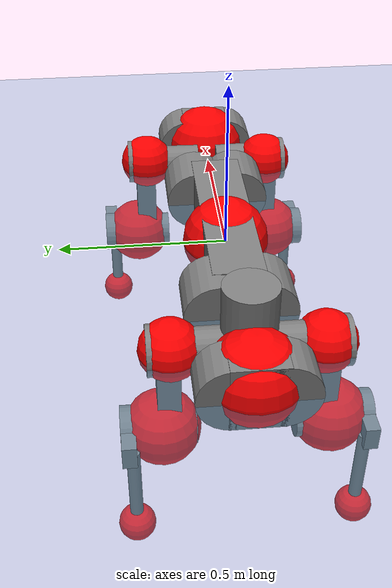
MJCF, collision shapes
<mujoco model="anymal_c">
  <compiler angle="radian" assetdir="assets" balanceinertia="true" inertiafromgeom="false"/>

  <option timestep="0.005" density="1.2" viscosity="2e-05"/>

  <size nkey="1"/>

  <visual>
    <quality shadowsize="8192"/>
    <map shadowclip="0.5"/>
  </visual>

  <default>
    <default class="/">
      <material specular="0" shininess="0.25"/>
      <geom contype="0" conaffinity="0" group="1" solref="-1000 -80"/>
      <site size="0.01 0.005 0.005" group="5"/>
      <general forcelimited="true" forcerange="-80 80" biastype="affine" gainprm="80" biasprm="0 -80 -2"/>
      <default class="anymal_c">
        <joint armature="0.01" damping="0.01" frictionloss="0.1"/>
        <default class="visual">
          <geom type="mesh" group="2"/>
          <default class="visual_zflip"/>
        </default>
        <default class="collision">
          <geom type="cylinder" group="3"/>
          <default class="foot">
            <geom size="0.03 0 0" type="sphere" condim="6" priority="1" friction="0.8 0.02 0.01" solimp="0.015 1 0.03"/>
          </default>
        </default>
      </default>
      <default class="reward_collision_sphere">
        <geom group="5" rgba="1 0 0 1"/>
      </default>
    </default>
  </default>

  <asset>
    <texture type="skybox" colorspace="auto" name="//unnamed_texture_0" builtin="gradient" rgb1="0.95 0.95 0.95" rgb2="0.95 0.95 0.95" width="100" height="600"/>
    <texture type="2d" colorspace="auto" name="texplane" builtin="checker" rgb1="0.345 0.575 0.748" rgb2="0.345 0.575 0.748" markrgb="1 1 1" width="512" height="512"/>
    <texture type="2d" colorspace="linear" name="base" file="base.png"/>
    <texture type="2d" colorspace="linear" name="top_shell" file="top_shell.png"/>
    <texture type="2d" colorspace="linear" name="bottom_shell" file="bottom_shell.png"/>
    <texture type="2d" colorspace="linear" name="remote" file="remote.png"/>
    <texture type="2d" colorspace="linear" name="hatch" file="hatch.png"/>
    <texture type="2d" colorspace="linear" name="handle" file="handle.png"/>
    <texture type="2d" colorspace="linear" name="face" file="face.png"/>
    <texture type="2d" colorspace="linear" name="battery" file="battery.png"/>
    <texture type="2d" colorspace="linear" name="lidar_cage" file="lidar_cage.png"/>
    <texture type="2d" colorspace="linear" name="depth_camera" file="depth_camera.png"/>
    <texture type="2d" colorspace="linear" name="wide_angle_camera" file="wide_angle_camera.png"/>
    <texture type="2d" colorspace="linear" name="lidar" file="lidar.png"/>
    <texture type="2d" colorspace="linear" name="drive" file="drive.png"/>
    <texture type="2d" colorspace="linear" name="hip_l" file="hip_l.png"/>
    <texture type="2d" colorspace="linear" name="shank_l" file="shank_l.png"/>
    <texture type="2d" colorspace="linear" name="foot" file="foot.png"/>
    <texture type="2d" colorspace="linear" name="thigh" file="thigh.png"/>
    <texture type="2d" colorspace="linear" name="shank_r" file="shank_r.png"/>
    <texture type="2d" colorspace="linear" name="hip_r" file="hip_r.png"/>
    <material name="MatPlane" class="/" texture="texplane" texuniform="true" texrepeat="2 2" specular="0.9" shininess="0.5"/>
    <material name="black_plastic" class="/" rgba="0.007 0.007 0.007 1"/>
    <material name="green" class="/" rgba="0.052 0.178 0.033 1"/>
    <material name="red" class="/" rgba="0.178 0.006 0.005 1"/>
    <material name="yellow" class="/" rgba="0.178 0.119 0.006 1"/>
    <material name="lwl" class="/" rgba="0.8 0.8 0.8 1"/>
    <material name="base" class="/" texture="base"/>
    <material name="top_shell" class="/" texture="top_shell"/>
    <material name="bottom_shell" class="/" texture="bottom_shell"/>
    <material name="hip_l" class="/" texture="hip_l"/>
    <material name="thigh" class="/" texture="thigh"/>
    <material name="shank_l" class="/" texture="shank_l"/>
    <material name="foot" class="/" texture="foot"/>
    <material name="hip_r" class="/" texture="hip_r"/>
    <material name="shank" class="/" texture="shank_r"/>
    <material name="hatch" class="/" texture="hatch"/>
    <material name="remote" class="/" texture="remote"/>
    <material name="handle" class="/" texture="handle"/>
    <material name="face" class="/" texture="face"/>
    <material name="depth_camera" class="/" texture="depth_camera"/>
    <material name="wide_angle_camera" class="/" texture="wide_angle_camera"/>
    <material name="battery" class="/" texture="battery"/>
    <material name="lidar_cage" class="/" texture="lidar_cage"/>
    <material name="lidar" class="/" texture="lidar"/>
    <material name="drive" class="/" texture="drive"/>
    <mesh name="base_0" class="/" file="base_0.obj"/>
    <mesh name="base_1" class="/" file="base_1.obj"/>
    <mesh name="base_2" class="/" file="base_2.obj"/>
    <mesh name="base_3" class="/" file="base_3.obj"/>
    <mesh name="base_4" class="/" file="base_4.obj"/>
    <mesh name="base_5" class="/" file="base_5.obj"/>
    <mesh name="top_shell" class="/" file="top_shell.obj"/>
    <mesh name="bottom_shell" class="/" file="bottom_shell.obj"/>
    <mesh name="remote" class="/" file="remote.obj"/>
    <mesh name="handle" class="/" file="handle.obj"/>
    <mesh name="face" class="/" file="face.obj"/>
    <mesh name="wide_angle_camera" class="/" file="wide_angle_camera.obj"/>
    <mesh name="depth_camera" class="/" file="depth_camera.obj"/>
    <mesh name="battery" class="/" file="battery.obj"/>
    <mesh name="lidar_cage" class="/" file="lidar_cage.obj"/>
    <mesh name="lidar" class="/" file="lidar.obj"/>
    <mesh name="drive" class="/" file="drive.obj"/>
    <mesh name="hip_l" class="/" file="hip_l.obj"/>
    <mesh name="thigh" class="/" file="thigh.obj"/>
    <mesh name="shank_l" class="/" file="shank_l.obj"/>
    <mesh name="foot" class="/" file="foot.obj"/>
    <mesh name="hip_r" class="/" file="hip_r.obj"/>
    <mesh name="hatch" class="/" file="hatch.obj"/>
    <mesh name="shank_r" class="/" file="shank_r.obj"/>
  </asset>

  <worldbody>
    <geom name="floor" class="/" size="100 100 0.125" type="plane" group="0" material="MatPlane"/>
    <light name="toplight_shadow" class="/" pos="0 0 5" dir="0.0990148 0.0990148 -0.990148" type="directional" ambient="0.04 0.04 0.04" diffuse="0.55 0.55 0.55" specular="0.12 0.12 0.12"/>
    <light name="toplight_fill" class="/" pos="0 0 5" dir="0.0990148 0.0990148 -0.990148" type="directional" castshadow="false" ambient="0.04 0.04 0.04" diffuse="0.3 0.3 0.3" specular="0.08 0.08 0.08"/>
    <body name="trunk" childclass="anymal_c" pos="0.00031472 -0.000430604 0.00804841" quat="1 -0.0004677 -0.000306744 -0.000123271">
      <inertial pos="0.00388253 -0.0118709 0.0393206" quat="0.499368 0.500393 0.50021 0.500029" mass="24.5845" diaginertia="2.72912 0.374216 0.189856"/>
      <joint name="//unnamed_joint_0" type="free" armature="0" damping="0" frictionloss="0"/>
      <geom name="//unnamed_geom_1" class="visual" material="green" mesh="base_0"/>
      <geom name="//unnamed_geom_2" class="visual" material="yellow" mesh="base_1"/>
      <geom name="//unnamed_geom_3" class="visual" material="red" mesh="base_2"/>
      <geom name="//unnamed_geom_4" class="visual" material="black_plastic" mesh="base_3"/>
      <geom name="//unnamed_geom_5" class="visual" material="lwl" mesh="base_4"/>
      <geom name="//unnamed_geom_6" class="visual" material="base" mesh="base_5"/>
      <geom name="trunk_1" class="collision" size="0.310461 0.074939 0.0963501" type="box"/>
      <geom name="trunk_2" class="collision" size="0.0963501 0.0776154" pos="0.295235 0.0623517 0" quat="0.707107 0 0.707107 0"/>
      <geom name="trunk_3" class="collision" size="0.0963501 0.0776154" pos="-0.295235 0.0623517 0" quat="0.707107 0 0.707107 0"/>
      <geom name="trunk_4" class="collision" size="0.0963501 0.0776154" pos="0.295235 -0.0623517 0" quat="0.707107 0 0.707107 0"/>
      <geom name="trunk_5" class="collision" size="0.0963501 0.0776154" pos="-0.295235 -0.0623517 0" quat="0.707107 0 0.707107 0"/>
      <geom name="//unnamed_geom_12" class="visual" material="top_shell" mesh="top_shell"/>
      <geom name="//unnamed_geom_13" class="visual" material="bottom_shell" mesh="bottom_shell"/>
      <geom name="//unnamed_geom_14" class="visual" material="remote" mesh="remote"/>
      <geom name="//unnamed_geom_15" class="visual" material="handle" mesh="handle"/>
      <geom name="//unnamed_geom_16" class="visual" pos="0.562643 0 0" quat="1 0 0 0" material="face" mesh="face"/>
      <geom name="trunk_6" class="collision" size="0.0588806 0.074939 0.0963501" pos="0.6373 0 0" type="box"/>
      <geom name="//unnamed_geom_18" class="collision" size="0.0963501 0.0588806" pos="0.6373 0.0623517 0" quat="0.707107 0 0.707107 0"/>
      <geom name="//unnamed_geom_19" class="collision" size="0.0963501 0.0588806" pos="0.6373 -0.0623517 0" quat="0.707107 0 0.707107 0"/>
      <geom name="//unnamed_geom_20" class="visual" pos="0.626628 0 -0.0251416" quat="0.965926 0 0.258819 0" material="depth_camera" mesh="depth_camera"/>
      <geom name="//unnamed_geom_21" class="visual" pos="0.696347 0 0.014424" material="wide_angle_camera" mesh="wide_angle_camera"/>
      <geom name="//unnamed_geom_22" class="visual_zflip" pos="-0.562643 0 0" quat="0 0 0 1" material="face" mesh="face"/>
      <geom name="trunk_7" class="collision" size="0.0588806 0.074939 0.0963501" pos="-0.6373 0 0" quat="0 0 0 1" type="box"/>
      <geom name="//unnamed_geom_24" class="collision" size="0.0963501 0.0588806" pos="-0.6373 -0.0623517 0" quat="0 -0.707107 0 0.707107"/>
      <geom name="//unnamed_geom_25" class="collision" size="0.0963501 0.0588806" pos="-0.6373 0.0623517 0" quat="0 -0.707107 0 0.707107"/>
      <geom name="//unnamed_geom_26" class="visual" pos="-0.626628 0 -0.0251416" quat="0 -0.258819 0 0.965926" material="depth_camera" mesh="depth_camera"/>
      <geom name="//unnamed_geom_27" class="visual_zflip" pos="-0.696347 0 0.014424" quat="0 0 0 1" material="wide_angle_camera" mesh="wide_angle_camera"/>
      <geom name="//unnamed_geom_28" class="visual" material="battery" mesh="battery"/>
      <geom name="//unnamed_geom_29" class="visual" pos="0 0.0619659 0.030984" quat="0.683013 -0.183013 0.183013 0.683013" material="depth_camera" mesh="depth_camera"/>
      <geom name="//unnamed_geom_30" class="visual" pos="0 -0.0619659 0.030984" quat="0.683013 0.183013 0.183013 -0.683013" material="depth_camera" mesh="depth_camera"/>
      <geom name="//unnamed_geom_31" class="visual" pos="-0.494094 0 0.0708194" quat="1 0 0 0" material="lidar_cage" mesh="lidar_cage"/>
      <geom name="trunk_8" class="collision" size="0.074939 0.0642334" pos="-0.494094 0 0.128631"/>
      <geom name="//unnamed_geom_33" class="visual" pos="-0.494094 -0.000183339 0.137014" quat="0.707107 0 0 -0.707107" material="lidar" mesh="lidar"/>
      <geom name="//unnamed_geom_34" class="visual" pos="0.407085 0.0926627 -1.25565e-09" quat="0.258819 0.965926 0 0" material="drive" mesh="drive"/>
      <geom name="//unnamed_geom_35" class="visual" pos="0.407085 -0.0926627 1.25565e-09" quat="0.258819 -0.965926 0 0" material="drive" mesh="drive"/>
      <geom name="//unnamed_geom_36" class="visual" pos="-0.407085 0.0926627 1.25565e-09" quat="0 0 0.965926 -0.258819" material="drive" mesh="drive"/>
      <geom name="//unnamed_geom_37" class="visual" pos="-0.407085 -0.0926627 -1.25565e-09" quat="0 0 -0.965926 -0.258819" material="drive" mesh="drive"/>
      <geom name="//unnamed_geom_38" class="visual" pos="0.157459 0 0.0703376" quat="1 0 0 0" material="hatch" mesh="hatch"/>
      <geom name="//unnamed_geom_39" class="reward_collision_sphere" size="0.128467"/>
      <geom name="//unnamed_geom_40" class="reward_collision_sphere" size="0.128467" pos="0.610831 0 0"/>
      <geom name="//unnamed_geom_41" class="reward_collision_sphere" size="0.128467" pos="-0.610831 0 0"/>
      <site name="imu" pos="0.319991 0.0376526 0.0250322" size="0.0107056"/>
      <camera name="track" pos="0 -1.78148 0" quat="0.707107 0.707107 0 0" mode="trackcom"/>
      <camera name="ego_camera" pos="0.610831 0 -0.0385412" quat="-0.5 -0.5 0.5 0.5"/>
      <body name="LF_HIP" pos="0.40639 0.0995733 8.38152e-05" quat="0.258762 0.96594 -0.000389759 -0.00115515">
        <inertial pos="0.0871635 -0.0145612 -0.00224478" quat="-0.127028 0.707607 -0.135351 0.681789" mass="3.63918" diaginertia="0.0278166 0.00306334 0.0026066"/>
        <joint name="LF_HAA" pos="0 0 0" axis="1 -2.51902e-06 0.000819204" range="-0.626892 0.505889" armature="0.00677439" damping="0" frictionloss="0.159281"/>
        <geom name="//unnamed_geom_42" class="visual" pos="0 -7.3864e-05 1.21321e-05" quat="0.258819 -0.965926 0 0" material="hip_l" mesh="hip_l"/>
        <geom name="//unnamed_geom_43" class="visual" pos="0.0813084 -0.0924039 -0.0538878" quat="0.183013 -0.683013 0.683013 0.183013" material="drive" mesh="drive"/>
        <geom name="//unnamed_geom_44" class="collision" size="0.0535278 0.074939" pos="0.0813084 -0.0106531 -0.00665317" quat="-0.353553 -0.612372 0.612372 -0.353553"/>
        <body name="LF_THIGH" pos="0.081237 -0.0643582 -0.0450266" quat="0.182825 -0.682793 0.683153 0.183497">
          <inertial pos="0.0409548 -0.0012812 -0.230826" quat="0.992808 -0.00908837 -0.0822493 0.086519" mass="4.15144" diaginertia="0.135159 0.0168593 0.00455811"/>
          <joint name="LF_HFE" pos="0 0 0" axis="0.999702 0.0148491 -0.0194004" stiffness="0.0139892" range="-2.99447 3.04748" armature="0.00906375" damping="0.00777209" frictionloss="0.10743"/>
          <geom name="//unnamed_geom_45" class="visual" pos="0.00928476 1.46306e-05 0" quat="0.707107 0 0 -0.707107" material="thigh" mesh="thigh"/>
          <geom name="//unnamed_geom_46" class="collision" size="0.0695862 0.0428223" pos="0.0542961 0 0" quat="0.5 0.5 -0.5 -0.5"/>
          <geom name="//unnamed_geom_47" class="collision" size="0.0401459 0.0321167 0.151285" pos="0.0407221 0 -0.13616" quat="0.707107 0 0 -0.707107" type="box"/>
          <geom name="//unnamed_geom_48" class="visual" pos="0.136147 0 -0.274606" quat="1 0 0 0" material="drive" mesh="drive"/>
          <geom name="//unnamed_geom_49" class="collision" size="0.0535278 0.074939" pos="0.0411293 0 -0.274606" quat="0.707107 0 0.707107 0"/>
          <geom name="//unnamed_geom_50" class="reward_collision_sphere" size="0.0856445" pos="0.033935 0 0"/>
          <body name="LF_SHANK" pos="0.140799 -0.00787373 -0.283373" quat="0.999984 0.00171367 -0.00152463 0.00518006">
            <inertial pos="0.00689155 -0.0543672 -0.0788931" quat="0.992828 -0.116633 -0.00244228 -0.0261272" mass="0.836395" diaginertia="0.0461337 0.00536659 0.00103516"/>
            <joint name="LF_KFE" pos="0 0 0" axis="0.999934 -0.00885697 0.00728124" stiffness="0.00329891" range="-3.14724 3.16345" armature="0.013499" damping="0" frictionloss="0.150298"/>
            <geom name="//unnamed_geom_51" class="visual" pos="0.00302756 0.0161431 0" quat="0.707107 0 0 -0.707107" material="shank_l" mesh="shank_l"/>
            <geom name="LF_kfe_act" class="collision" size="0.0642334 0.0214111" pos="0.027148 0 0" quat="0.5 0.5 -0.5 -0.5"/>
            <geom name="//unnamed_geom_53" class="collision" size="0.0615559 0.0361313 0.0203406" pos="0.027148 -0.0512166 0" quat="0.5 0.5 -0.5 -0.5" type="box"/>
            <geom name="//unnamed_geom_54" class="visual" pos="0.0177134 -0.0731382 -0.325644" quat="0.382683 0 0 -0.92388" material="foot" mesh="foot"/>
            <geom name="LF_calf" class="collision" size="0.0187347 0.151218" pos="0.0177141 -0.0783405 -0.162822" quat="0.707107 0 0 -0.707107"/>
            <geom name="LF_foot" class="foot" size="0.0208662" pos="0.0177141 -0.0783405 -0.303965" quat="0.707107 0 0 -0.707107"/>
            <geom name="//unnamed_geom_57" class="reward_collision_sphere" size="0.107056" pos="-0.0678701 0 0"/>
            <geom name="//unnamed_geom_58" class="reward_collision_sphere" size="0.0535278" pos="0.0177141 -0.0783405 -0.303965"/>
            <site name="LF_foot" class="foot" pos="0.0177141 -0.0783405 -0.303965" quat="0.707107 0 0 -0.707107" size="0.0107056"/>
          </body>
        </body>
      </body>
      <body name="RF_HIP" pos="0.403717 -0.0861236 -0.000763937" quat="0.257732 -0.966205 0.00110526 0.00448559">
        <inertial pos="0.0757009 0.0130244 -0.0070081" quat="0.133991 0.683146 0.122939 0.707279" mass="3.728" diaginertia="0.0304446 0.00334276 0.00267822"/>
        <joint name="RF_HAA" pos="0 0 0" axis="0.99998 -0.000824752 0.0062827" range="-0.668781 0.944628" armature="0.00996192" damping="0" frictionloss="0.145189"/>
        <geom name="//unnamed_geom_59" class="visual" pos="0 7.38634e-05 1.21321e-05" quat="0.258819 0.965926 0 0" material="hip_r" mesh="hip_r"/>
        <geom name="//unnamed_geom_60" class="visual" pos="0.0813084 0.0924039 -0.0538878" quat="0.183013 0.683013 0.683013 -0.183013" material="drive" mesh="drive"/>
        <geom name="//unnamed_geom_61" class="collision" size="0.0535278 0.074939" pos="0.0813084 0.0106531 -0.00665317" quat="-0.353553 0.612372 0.612372 0.353553"/>
        <body name="RF_THIGH" pos="0.0686527 0.0584429 -0.038501" quat="0.181985 0.683731 0.682495 -0.183286">
          <inertial pos="0.0432001 0.000547667 -0.236902" quat="0.992824 0.000460587 -0.0834279 0.085672" mass="3.36993" diaginertia="0.133279 0.0148548 0.00285919"/>
          <joint name="RF_HFE" pos="0 0 0" axis="0.998321 -0.0277786 -0.050831" stiffness="0.00606905" range="-3.40363 3.36552" armature="0.0114297" damping="0.049534" frictionloss="0.117579"/>
          <geom name="//unnamed_geom_62" class="visual" pos="0.00928476 1.46306e-05 0" quat="0.707107 0 0 -0.707107" material="thigh" mesh="thigh"/>
          <geom name="//unnamed_geom_63" class="collision" size="0.0695862 0.0428223" pos="0.0542961 0 0" quat="0.5 0.5 0.5 0.5"/>
          <geom name="//unnamed_geom_64" class="collision" size="0.0401459 0.0321167 0.151285" pos="0.0407221 0 -0.13616" quat="0.707107 0 0 0.707107" type="box"/>
          <geom name="//unnamed_geom_65" class="visual" pos="0.136147 0 -0.274606" quat="1 0 0 0" material="drive" mesh="drive"/>
          <geom name="//unnamed_geom_66" class="collision" size="0.0535278 0.074939" pos="0.0411293 0 -0.274606" quat="0.707107 0 0.707107 0"/>
          <geom name="//unnamed_geom_67" class="reward_collision_sphere" size="0.0856445" pos="0.033935 0 0"/>
          <body name="RF_SHANK" pos="0.12451 -0.00156854 -0.280273" quat="1 -0.00014323 0.000437352 0.000487169">
            <inertial pos="0.0115013 0.0565078 -0.0901954" quat="0.994467 0.103004 0.000932059 0.0205974" mass="0.858709" diaginertia="0.0437466 0.00518705 0.00093047"/>
            <joint name="RF_KFE" pos="0 0 0" axis="0.997781 -0.061065 0.0265327" stiffness="0.0180059" range="-3.19275 3.33447" armature="0.0115311" damping="0.00358423" frictionloss="0.177743"/>
            <geom name="//unnamed_geom_68" class="visual" pos="0.00302754 -0.0161431 0" quat="0.707107 0 0 0.707107" material="shank" mesh="shank_r"/>
            <geom name="RF_kfe_act" class="collision" size="0.0642334 0.0214111" pos="0.027148 0 0" quat="0.5 0.5 0.5 0.5"/>
            <geom name="//unnamed_geom_70" class="collision" size="0.0615559 0.0361313 0.0203406" pos="0.027148 0.0512166 0" quat="0.5 0.5 0.5 0.5" type="box"/>
            <geom name="//unnamed_geom_71" class="visual" pos="0.0177148 0.0731382 -0.325644" quat="0.382683 0 0 0.92388" material="foot" mesh="foot"/>
            <geom name="RF_calf" class="collision" size="0.0187347 0.151218" pos="0.0177141 0.0783405 -0.162822" quat="0.707107 0 0 0.707107"/>
            <geom name="RF_foot" class="foot" size="0.029832" pos="0.0177141 0.0783405 -0.303965" quat="0.707107 0 0 0.707107"/>
            <geom name="//unnamed_geom_74" class="reward_collision_sphere" size="0.107056" pos="-0.0678701 0 0"/>
            <geom name="//unnamed_geom_75" class="reward_collision_sphere" size="0.0535278" pos="0.0177141 0.0783405 -0.303965"/>
            <site name="RF_foot" class="foot" pos="0.0177141 0.0783405 -0.303965" quat="0.707107 0 0 0.707107" size="0.0107056"/>
          </body>
        </body>
      </body>
      <body name="LH_HIP" pos="-0.405223 0.0843762 0.000208572" quat="2.0007e-05 -3.40806e-05 0.965888 -0.258959">
        <inertial pos="0.0824547 0.023559 -0.00904882" quat="0.0680516 0.685503 0.114421 0.715795" mass="3.97134" diaginertia="0.0257245 0.00249621 0.00288414"/>
        <joint name="LH_HAA" pos="0 0 0" axis="0.999172 0.0205858 -0.0350983" stiffness="0.0431317" range="-0.529242 0.82744" armature="0.0111939" damping="0.0441076" frictionloss="0.0768339"/>
        <geom name="//unnamed_geom_76" class="visual" pos="0 7.38634e-05 1.21321e-05" quat="-0.258819 -0.965926 0 0" material="hip_r" mesh="hip_r"/>
        <geom name="//unnamed_geom_77" class="visual" pos="0.0813084 0.0924039 -0.0538878" quat="0.183013 0.683013 0.683013 -0.183013" material="drive" mesh="drive"/>
        <geom name="//unnamed_geom_78" class="collision" size="0.0535278 0.074939" pos="0.0813084 0.0106531 -0.00665317" quat="-0.353553 0.612372 0.612372 0.353553"/>
        <body name="LH_THIGH" pos="0.0807893 0.0748007 -0.0392375" quat="0.181216 0.683575 0.682359 -0.185129">
          <inertial pos="0.045309 0.00793667 -0.236642" quat="0.995012 -0.00352373 -0.0656492 0.0750299" mass="3.60731" diaginertia="0.121208 0.0154598 0.00277892"/>
          <joint name="LH_HFE" pos="0 0 0" axis="0.999989 -0.00302444 -0.00371933" range="-3.15488 3.16753" armature="0.011072" damping="0.0215752" frictionloss="0.109824"/>
          <geom name="//unnamed_geom_79" class="visual" pos="0.00928476 1.46306e-05 0" quat="0.707107 0 0 -0.707107" material="thigh" mesh="thigh"/>
          <geom name="//unnamed_geom_80" class="collision" size="0.0695862 0.0428223" pos="0.0542961 0 0" quat="0.5 0.5 -0.5 -0.5"/>
          <geom name="//unnamed_geom_81" class="collision" size="0.0401459 0.0321167 0.151285" pos="0.0407221 0 -0.13616" quat="0.707107 0 0 -0.707107" type="box"/>
          <geom name="//unnamed_geom_82" class="visual" pos="0.136147 0 -0.274606" quat="1 0 0 0" material="drive" mesh="drive"/>
          <geom name="//unnamed_geom_83" class="collision" size="0.0535278 0.074939" pos="0.0411293 0 -0.274606" quat="0.707107 0 0.707107 0"/>
          <geom name="//unnamed_geom_84" class="reward_collision_sphere" size="0.0856445" pos="0.033935 0 0"/>
          <body name="LH_SHANK" pos="0.127524 0.0012999 -0.274701" quat="0.999988 -0.00462454 0.00123884 0.000343528">
            <inertial pos="-0.00149944 0.0579752 -0.0700819" quat="0.992874 0.116333 -0.00153944 0.0258086" mass="0.676154" diaginertia="0.0402439 0.00369144 0.000636632"/>
            <joint name="LH_KFE" pos="0 0 0" axis="0.999414 0.0211746 0.0269021" stiffness="0.00104726" range="-3.16242 3.4172" armature="0.0105223" damping="0" frictionloss="0.0787468"/>
            <geom name="//unnamed_geom_85" class="visual" pos="0.00302754 -0.0161431 0" quat="-0.707107 0 0 -0.707107" material="shank" mesh="shank_r"/>
            <geom name="LH_kfe_act" class="collision" size="0.0642334 0.0214111" pos="0.027148 0 0" quat="0.5 0.5 -0.5 -0.5"/>
            <geom name="//unnamed_geom_87" class="collision" size="0.0615559 0.0361313 0.0203406" pos="0.027148 0.0512166 0" quat="0.5 0.5 -0.5 -0.5" type="box"/>
            <geom name="//unnamed_geom_88" class="visual" pos="0.0177148 0.0731382 -0.325644" quat="-0.382683 0 0 -0.92388" material="foot" mesh="foot"/>
            <geom name="LH_calf" class="collision" size="0.0187347 0.151218" pos="0.0177141 0.0783405 -0.162822" quat="0.707107 0 0 -0.707107"/>
            <geom name="LH_foot" class="foot" size="0.0463166" pos="0.0177141 0.0783405 -0.303965" quat="0.707107 0 0 -0.707107"/>
            <geom name="//unnamed_geom_91" class="reward_collision_sphere" size="0.107056" pos="-0.0678701 0 0"/>
            <geom name="//unnamed_geom_92" class="reward_collision_sphere" size="0.0535278" pos="0.0177141 0.0783405 -0.303965"/>
            <site name="LH_foot" class="foot" pos="0.0177141 0.0783405 -0.303965" quat="0.707107 0 0 -0.707107" size="0.0107056"/>
          </body>
        </body>
      </body>
      <body name="RH_HIP" pos="-0.40861 -0.101728 0.00262579" quat="0.00268733 0.00323008 -0.965138 -0.261709">
        <inertial pos="0.0751385 -0.019 -0.00320659" quat="-0.172503 0.682088 -0.173584 0.689106" mass="3.84168" diaginertia="0.026913 0.00321345 0.00296105"/>
        <joint name="RH_HAA" pos="0 0 0" axis="0.999848 -0.0036082 0.017044" stiffness="0.0136207" range="-0.518695 0.44874" armature="0.0167945" damping="0.0249907" frictionloss="0.0698123"/>
        <geom name="//unnamed_geom_93" class="visual" pos="0 -7.3864e-05 1.21321e-05" quat="-0.258819 0.965926 0 0" material="hip_l" mesh="hip_l"/>
        <geom name="//unnamed_geom_94" class="visual" pos="0.0813084 -0.0924039 -0.0538878" quat="-0.183013 0.683013 -0.683013 -0.183013" material="drive" mesh="drive"/>
        <geom name="//unnamed_geom_95" class="collision" size="0.0535278 0.074939" pos="0.0813084 -0.0106531 -0.00665317" quat="0.353553 0.612372 -0.612372 0.353553"/>
        <body name="RH_THIGH" pos="0.0817955 -0.0630452 -0.0284803" quat="-0.183024 0.683025 -0.682948 -0.183198">
          <inertial pos="0.0422996 -0.0134116 -0.243011" quat="0.99403 0.03032 -0.0530868 0.0903669" mass="4.33182" diaginertia="0.161266 0.0192508 0.00405046"/>
          <joint name="RH_HFE" pos="0 0 0" axis="0.999358 0.0314981 0.0170881" range="-3.22928 3.36824" armature="0.00298242" damping="0.00267945" frictionloss="0.0904818"/>
          <geom name="//unnamed_geom_96" class="visual" pos="0.00928476 1.46306e-05 0" quat="0.707107 0 0 -0.707107" material="thigh" mesh="thigh"/>
          <geom name="//unnamed_geom_97" class="collision" size="0.0695862 0.0428223" pos="0.0542961 0 0" quat="0.5 0.5 0.5 0.5"/>
          <geom name="//unnamed_geom_98" class="collision" size="0.0401459 0.0321167 0.151285" pos="0.0407221 0 -0.13616" quat="0.707107 0 0 0.707107" type="box"/>
          <geom name="//unnamed_geom_99" class="visual" pos="0.136147 0 -0.274606" quat="1 0 0 0" material="drive" mesh="drive"/>
          <geom name="//unnamed_geom_100" class="collision" size="0.0535278 0.074939" pos="0.0411293 0 -0.274606" quat="0.707107 0 0.707107 0"/>
          <geom name="//unnamed_geom_101" class="reward_collision_sphere" size="0.0856445" pos="0.033935 0 0"/>
          <body name="RH_SHANK" pos="0.136401 0.00901409 -0.275406" quat="0.999991 0.0034445 0.00236577 -3.4849e-05">
            <inertial pos="0.00199328 -0.0558619 -0.0788729" quat="0.9971 -0.0653037 0.0322627 -0.022064" mass="0.877637" diaginertia="0.0492161 0.00574396 0.000826198"/>
            <joint name="RH_KFE" pos="0 0 0" axis="0.998479 -0.0130939 0.0535483" range="-3.32387 2.92649" armature="0.0102764" damping="0.00560965" frictionloss="0.103098"/>
            <geom name="//unnamed_geom_102" class="visual" pos="0.00302756 0.0161431 0" quat="0.707107 0 0 -0.707107" material="shank_l" mesh="shank_l"/>
            <geom name="RH_kfe_act" class="collision" size="0.0642334 0.0214111" pos="0.027148 0 0" quat="0.5 0.5 0.5 0.5"/>
            <geom name="//unnamed_geom_104" class="collision" size="0.0615559 0.0361313 0.0203406" pos="0.027148 -0.0512166 0" quat="0.5 0.5 0.5 0.5" type="box"/>
            <geom name="//unnamed_geom_105" class="visual" pos="0.0177134 -0.0731382 -0.325644" quat="0.382683 0 0 -0.92388" material="foot" mesh="foot"/>
            <geom name="RH_calf" class="collision" size="0.0187347 0.151218" pos="0.0177141 -0.0783405 -0.162822" quat="0.707107 0 0 0.707107"/>
            <geom name="RH_foot" class="foot" size="0.0480262" pos="0.0177141 -0.0783405 -0.303965" quat="0.707107 0 0 0.707107"/>
            <geom name="//unnamed_geom_108" class="reward_collision_sphere" size="0.107056" pos="-0.0678701 0 0"/>
            <geom name="//unnamed_geom_109" class="reward_collision_sphere" size="0.0535278" pos="0.0177141 -0.0783405 -0.303965"/>
            <site name="RH_foot" class="foot" pos="0.0177141 -0.0783405 -0.303965" quat="0.707107 0 0 0.707107" size="0.0107056"/>
          </body>
        </body>
      </body>
    </body>
  </worldbody>

  <contact>
    <pair class="/" geom1="floor" geom2="LF_foot" name="//unnamed_contact_0"/>
    <pair class="/" geom1="floor" geom2="RF_foot" name="//unnamed_contact_1"/>
    <pair class="/" geom1="floor" geom2="LH_foot" name="//unnamed_contact_2"/>
    <pair class="/" geom1="floor" geom2="RH_foot" name="//unnamed_contact_3"/>
  </contact>

  <actuator>
    <general name="LF_HAA" class="/" joint="LF_HAA" forcerange="-105.484 105.484" gainprm="60.9196" biasprm="0 -60.9196 -1.89579"/>
    <general name="LF_HFE" class="/" joint="LF_HFE" forcerange="-127.7 127.7" gainprm="60.9196" biasprm="0 -60.9196 -1.89579"/>
    <general name="LF_KFE" class="/" joint="LF_KFE" forcerange="-78.2029 78.2029" gainprm="60.9196" biasprm="0 -60.9196 -1.89579"/>
    <general name="RF_HAA" class="/" joint="RF_HAA" forcerange="-95.1817 95.1817" gainprm="60.9196" biasprm="0 -60.9196 -1.89579"/>
    <general name="RF_HFE" class="/" joint="RF_HFE" forcerange="-74.0633 74.0633" gainprm="60.9196" biasprm="0 -60.9196 -1.89579"/>
    <general name="RF_KFE" class="/" joint="RF_KFE" forcerange="-101.77 101.77" gainprm="60.9196" biasprm="0 -60.9196 -1.89579"/>
    <general name="LH_HAA" class="/" joint="LH_HAA" forcerange="-61.9352 61.9352" gainprm="60.9196" biasprm="0 -60.9196 -1.89579"/>
    <general name="LH_HFE" class="/" joint="LH_HFE" forcerange="-85.4692 85.4692" gainprm="60.9196" biasprm="0 -60.9196 -1.89579"/>
    <general name="LH_KFE" class="/" joint="LH_KFE" forcerange="-104.182 104.182" gainprm="60.9196" biasprm="0 -60.9196 -1.89579"/>
    <general name="RH_HAA" class="/" joint="RH_HAA" forcerange="-126.899 126.899" gainprm="60.9196" biasprm="0 -60.9196 -1.89579"/>
    <general name="RH_HFE" class="/" joint="RH_HFE" forcerange="-89.6314 89.6314" gainprm="60.9196" biasprm="0 -60.9196 -1.89579"/>
    <general name="RH_KFE" class="/" joint="RH_KFE" forcerange="-91.3422 91.3422" gainprm="60.9196" biasprm="0 -60.9196 -1.89579"/>
  </actuator>

  <sensor>
    <gyro site="imu" name="imu_angular_velocity"/>
    <velocimeter site="imu" name="imu_linear_velocity"/>
    <framelinvel objtype="site" objname="LF_foot" name="LF_foot_global_linear_velocity"/>
    <framelinvel objtype="site" objname="RF_foot" name="RF_foot_global_linear_velocity"/>
    <framelinvel objtype="site" objname="LH_foot" name="LH_foot_global_linear_velocity"/>
    <framelinvel objtype="site" objname="RH_foot" name="RH_foot_global_linear_velocity"/>
  </sensor>

  <keyframe>
    <key name="home" qpos="0 0 0.55 1 0 0 0 0 0.4 -0.8 0 -0.4 0.8 0 -0.4 0.8 0 0.4 -0.8"/>
  </keyframe>
</mujoco>
